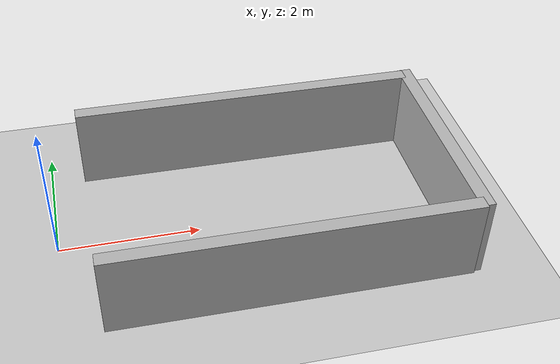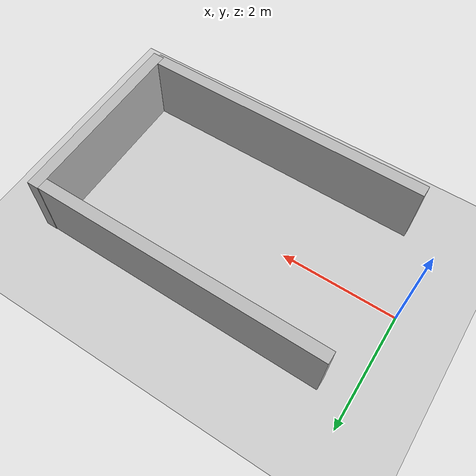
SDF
<?xml version="1.0"?>
<sdf version="1.6">
  <world name="v2-04c-q-maneuver-s4495">
    <gravity>0 0 -9.81</gravity>
    <physics name="v2_deterministic" type="ode">
      <max_step_size>0.002</max_step_size>
      <real_time_update_rate>500</real_time_update_rate>
    </physics>
    <include>
      <uri>model://sun</uri>
    </include>
    <include>
      <uri>model://ground_plane</uri>
    </include>
    <model name="q-bay-left">
      <static>true</static>
      <pose>2.977176799 1.514035693 0.600000000 0 0 -0.004473570</pose>
      <link name="link">
        <collision name="collision">
          <geometry>
            <box>
              <size>5.000000 0.200000 1.200000</size>
            </box>
          </geometry>
        </collision>
        <visual name="visual">
          <geometry>
            <box>
              <size>5.000000 0.200000 1.200000</size>
            </box>
          </geometry>
        </visual>
      </link>
    </model>
    <model name="q-bay-right">
      <static>true</static>
      <pose>2.999655926 -1.512558307 0.600000000 0 0 -0.004229142</pose>
      <link name="link">
        <collision name="collision">
          <geometry>
            <box>
              <size>5.000000 0.200000 1.200000</size>
            </box>
          </geometry>
        </collision>
        <visual name="visual">
          <geometry>
            <box>
              <size>5.000000 0.200000 1.200000</size>
            </box>
          </geometry>
        </visual>
      </link>
    </model>
    <model name="q-bay-back">
      <static>true</static>
      <pose>5.508497664 0.010010232 0.600000000 0 0 -0.000908145</pose>
      <link name="link">
        <collision name="collision">
          <geometry>
            <box>
              <size>0.200000 3.200000 1.200000</size>
            </box>
          </geometry>
        </collision>
        <visual name="visual">
          <geometry>
            <box>
              <size>0.200000 3.200000 1.200000</size>
            </box>
          </geometry>
        </visual>
      </link>
    </model>
  </world>
</sdf>
